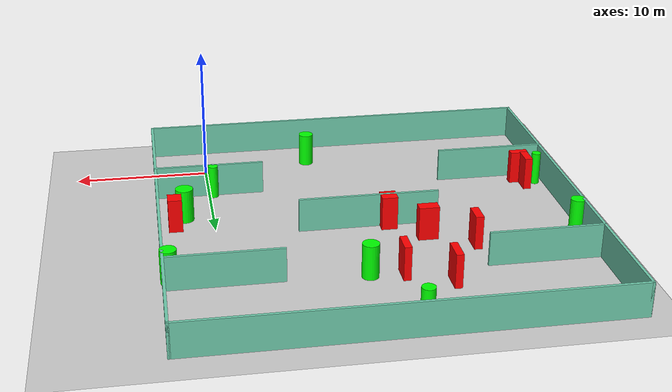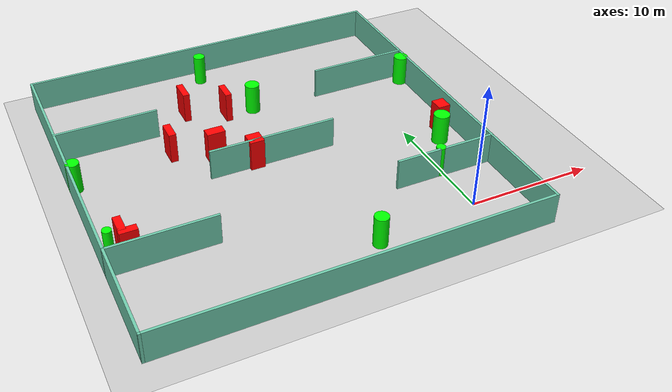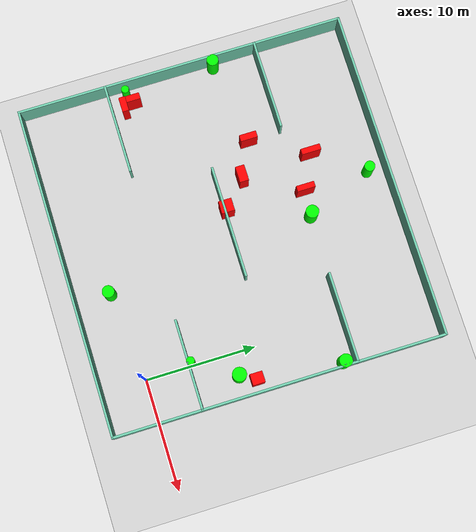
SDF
<sdf version="1.7">
 <world name="default">
  <light name="sun" type="directional">
   <pose>0 0 10 0 -0 0</pose>
   <diffuse>0.8 0.8 0.8 1</diffuse>
   <specular>0.2 0.2 0.2 1</specular>
   <attenuation>
    <range>1000</range>
    <constant>0.9</constant>
    <linear>0.01</linear>
    <quadratic>0.001</quadratic>
   </attenuation>
   <direction>-0.5 0.1 -0.9</direction>
   <spot><inner_angle>0</inner_angle><outer_angle>0</outer_angle><falloff>0</falloff></spot>
  </light>
  <model name="ground_plane">
   <static>1</static>
   <link name="link">
    <collision name="collision">
     <geometry><plane><normal>0 0 1</normal><size>100 100</size></plane></geometry>
     <surface>
      <contact><collide_bitmask>65535</collide_bitmask></contact>
      <friction><ode><mu>100</mu><mu2>50</mu2></ode></friction>
     </surface>
    </collision>
    <visual name="visual">
     <cast_shadows>0</cast_shadows>
     <geometry><plane><normal>0 0 1</normal><size>100 100</size></plane></geometry>
     <material>
      <script><uri>file://media/materials/scripts/gazebo.material</uri><name>Gazebo/Grey</name></script>
     </material>
    </visual>
   </link>
  </model>
  <gravity>0 0 -9.8</gravity>
  <magnetic_field>6e-06 2.3e-05 -4.2e-05</magnetic_field>
  <atmosphere type="adiabatic"/>
  <physics type="ode">
   <max_step_size>0.001</max_step_size>
   <real_time_factor>1</real_time_factor>
   <real_time_update_rate>1000</real_time_update_rate>
  </physics>
  <scene><ambient>0.4 0.4 0.4 1</ambient><background>0.7 0.7 0.7 1</background><shadows>1</shadows></scene>
  <spherical_coordinates>
   <surface_model>EARTH_WGS84</surface_model>
   <latitude_deg>0</latitude_deg>
   <longitude_deg>0</longitude_deg>
   <elevation>0</elevation>
   <heading_deg>0</heading_deg>
  </spherical_coordinates>
  <model name="my_base_walls">
   <link name="Wall_10">
    <collision name="Wall_10_Collision">
     <geometry><box><size>8.2 0.2 2.5</size></box></geometry>
     <pose>0 0 1.25 0 -0 0</pose>
    </collision>
    <visual name="Wall_10_Visual">
     <pose>0 0 1.25 0 -0 0</pose>
     <geometry><box><size>8.2 0.2 2.5</size></box></geometry>
     <material>
      <script><uri>file://media/materials/scripts/gazebo.material</uri><name>Gazebo/Grey</name></script>
      <ambient>0.435294 0.796078 0.67451 1</ambient>
     </material>
     <meta><layer>0</layer></meta>
    </visual>
    <pose>-11 -7 0 0 -0 0</pose>
   </link>
   <link name="Wall_12">
    <collision name="Wall_12_Collision">
     <geometry><box><size>8.2 0.2 2.5</size></box></geometry>
     <pose>0 0 1.25 0 -0 0</pose>
    </collision>
    <visual name="Wall_12_Visual">
     <pose>0 0 1.25 0 -0 0</pose>
     <geometry><box><size>8.2 0.2 2.5</size></box></geometry>
     <material>
      <script><uri>file://media/materials/scripts/gazebo.material</uri><name>Gazebo/Grey</name></script>
      <ambient>0.435294 0.796078 0.67451 1</ambient>
     </material>
     <meta><layer>0</layer></meta>
    </visual>
    <pose>-11 7 0 0 -0 0</pose>
   </link>
   <link name="Wall_14">
    <collision name="Wall_14_Collision">
     <geometry><box><size>8.2 0.2 2.5</size></box></geometry>
     <pose>0 0 1.25 0 -0 0</pose>
    </collision>
    <visual name="Wall_14_Visual">
     <pose>0 0 1.25 0 -0 0</pose>
     <geometry><box><size>8.2 0.2 2.5</size></box></geometry>
     <material>
      <script><uri>file://media/materials/scripts/gazebo.material</uri><name>Gazebo/Grey</name></script>
      <ambient>0.435294 0.796078 0.67451 1</ambient>
     </material>
     <meta><layer>0</layer></meta>
    </visual>
    <pose>11 7 0 0 -0 3.14159</pose>
   </link>
   <link name="Wall_16">
    <collision name="Wall_16_Collision">
     <geometry><box><size>10.2 0.2 2.5</size></box></geometry>
     <pose>0 0 1.25 0 -0 0</pose>
    </collision>
    <visual name="Wall_16_Visual">
     <pose>0 0 1.25 0 -0 0</pose>
     <geometry><box><size>10.2 0.2 2.5</size></box></geometry>
     <material>
      <script><uri>file://media/materials/scripts/gazebo.material</uri><name>Gazebo/Grey</name></script>
      <ambient>0.435294 0.796078 0.67451 1</ambient>
     </material>
     <meta><layer>0</layer></meta>
    </visual>
    <pose>0 0 0 0 -0 3.14159</pose>
   </link>
   <link name="Wall_2">
    <collision name="Wall_2_Collision">
     <geometry><box><size>30.2 0.2 2.5</size></box></geometry>
     <pose>0 0 1.25 0 -0 0</pose>
    </collision>
    <visual name="Wall_2_Visual">
     <pose>0 0 1.25 0 -0 0</pose>
     <geometry><box><size>30.2 0.2 2.5</size></box></geometry>
     <material>
      <script><uri>file://media/materials/scripts/gazebo.material</uri><name>Gazebo/Grey</name></script>
      <ambient>0.435294 0.796078 0.67451 1</ambient>
     </material>
     <meta><layer>0</layer></meta>
    </visual>
    <pose>0 -15 0 0 -0 3.14159</pose>
   </link>
   <link name="Wall_3">
    <collision name="Wall_3_Collision">
     <geometry><box><size>30.2 0.2 2.5</size></box></geometry>
     <pose>0 0 1.25 0 -0 0</pose>
    </collision>
    <visual name="Wall_3_Visual">
     <pose>0 0 1.25 0 -0 0</pose>
     <geometry><box><size>30.2 0.2 2.5</size></box></geometry>
     <material>
      <script><uri>file://media/materials/scripts/gazebo.material</uri><name>Gazebo/Grey</name></script>
      <ambient>0.435294 0.796078 0.67451 1</ambient>
     </material>
     <meta><layer>0</layer></meta>
    </visual>
    <pose>-15 0 0 0 -0 1.5708</pose>
   </link>
   <link name="Wall_4">
    <collision name="Wall_4_Collision">
     <geometry><box><size>30.2 0.2 2.5</size></box></geometry>
     <pose>0 0 1.25 0 -0 0</pose>
    </collision>
    <visual name="Wall_4_Visual">
     <pose>0 0 1.25 0 -0 0</pose>
     <geometry><box><size>30.2 0.2 2.5</size></box></geometry>
     <material>
      <script><uri>file://media/materials/scripts/gazebo.material</uri><name>Gazebo/Grey</name></script>
      <ambient>0.435294 0.796078 0.67451 1</ambient>
     </material>
     <meta><layer>0</layer></meta>
    </visual>
    <pose>0 15 0 0 -0 0</pose>
   </link>
   <link name="Wall_6">
    <collision name="Wall_6_Collision">
     <geometry><box><size>30.2 0.2 2.5</size></box></geometry>
     <pose>0 0 1.25 0 -0 0</pose>
    </collision>
    <visual name="Wall_6_Visual">
     <pose>0 0 1.25 0 -0 0</pose>
     <geometry><box><size>30.2 0.2 2.5</size></box></geometry>
     <material>
      <script><uri>file://media/materials/scripts/gazebo.material</uri><name>Gazebo/Grey</name></script>
      <ambient>0.435294 0.796078 0.67451 1</ambient>
     </material>
     <meta><layer>0</layer></meta>
    </visual>
    <pose>15 0 0 0 -0 1.5708</pose>
   </link>
   <link name="Wall_8">
    <collision name="Wall_8_Collision">
     <geometry><box><size>8.2 0.2 2.5</size></box></geometry>
     <pose>0 0 1.25 0 -0 0</pose>
    </collision>
    <visual name="Wall_8_Visual">
     <pose>0 0 1.25 0 -0 0</pose>
     <geometry><box><size>8.2 0.2 2.5</size></box></geometry>
     <material>
      <script><uri>file://media/materials/scripts/gazebo.material</uri><name>Gazebo/Grey</name></script>
      <ambient>0.435294 0.796078 0.67451 1</ambient>
     </material>
     <meta><layer>0</layer></meta>
    </visual>
    <pose>11 -7 0 0 -0 3.14159</pose>
   </link>
   <static>1</static>
   <pose>-11 11 0 0 -0 0</pose>
  </model>
  <model name="cylinder1">
   <static>1</static>
   <link name="link">
    <inertial>
     <mass>1</mass>
     <inertia><ixx>0.5</ixx><ixy>0</ixy><ixz>0</ixz><iyy>0.5</iyy><iyz>0</iyz><izz>1</izz></inertia>
    </inertial>
    <collision name="collision">
     <geometry><cylinder><radius>0.52744846134894</radius><length>2.5</length></cylinder></geometry>
    </collision>
    <visual name="visual">
     <geometry><cylinder><radius>0.52744846134894</radius><length>2.5</length></cylinder></geometry>
     <material>
      <ambient>0 1 0 1</ambient>
      <diffuse>0 1 0 1</diffuse>
      <specular>0.1 0.1 0.1 1</specular>
      <emissive>0 0 0 0</emissive>
     </material>
    </visual>
   </link>
   <pose>-25.58956207699537 13.96058366514859 1.25 0 0 0</pose>
  </model>
  <model name="cylinder2">
   <static>1</static>
   <link name="link">
    <inertial>
     <mass>1</mass>
     <inertia><ixx>0.5</ixx><ixy>0</ixy><ixz>0</ixz><iyy>0.5</iyy><iyz>0</iyz><izz>1</izz></inertia>
    </inertial>
    <collision name="collision">
     <geometry><cylinder><radius>0.5904958401156242</radius><length>2.5</length></cylinder></geometry>
    </collision>
    <visual name="visual">
     <geometry><cylinder><radius>0.5904958401156242</radius><length>2.5</length></cylinder></geometry>
     <material>
      <ambient>0 1 0 1</ambient>
      <diffuse>0 1 0 1</diffuse>
      <specular>0.1 0.1 0.1 1</specular>
      <emissive>0 0 0 0</emissive>
     </material>
    </visual>
   </link>
   <pose>-9.687258275873598 18.274568493887333 1.25 0 0 0</pose>
  </model>
  <model name="cylinder3">
   <static>1</static>
   <link name="link">
    <inertial>
     <mass>1</mass>
     <inertia><ixx>0.5</ixx><ixy>0</ixy><ixz>0</ixz><iyy>0.5</iyy><iyz>0</iyz><izz>1</izz></inertia>
    </inertial>
    <collision name="collision">
     <geometry><cylinder><radius>0.5465878273119239</radius><length>2.5</length></cylinder></geometry>
    </collision>
    <visual name="visual">
     <geometry><cylinder><radius>0.5465878273119239</radius><length>2.5</length></cylinder></geometry>
     <material>
      <ambient>0 1 0 1</ambient>
      <diffuse>0 1 0 1</diffuse>
      <specular>0.1 0.1 0.1 1</specular>
      <emissive>0 0 0 0</emissive>
     </material>
    </visual>
   </link>
   <pose>-8.15795325583537 -0.8506232189790226 1.25 0 0 0</pose>
  </model>
  <model name="cylinder4">
   <static>1</static>
   <link name="link">
    <inertial>
     <mass>1</mass>
     <inertia><ixx>0.5</ixx><ixy>0</ixy><ixz>0</ixz><iyy>0.5</iyy><iyz>0</iyz><izz>1</izz></inertia>
    </inertial>
    <collision name="collision">
     <geometry><cylinder><radius>0.34525372056909515</radius><length>2.5</length></cylinder></geometry>
    </collision>
    <visual name="visual">
     <geometry><cylinder><radius>0.34525372056909515</radius><length>2.5</length></cylinder></geometry>
     <material>
      <ambient>0 1 0 1</ambient>
      <diffuse>0 1 0 1</diffuse>
      <specular>0.1 0.1 0.1 1</specular>
      <emissive>0 0 0 0</emissive>
     </material>
    </visual>
   </link>
   <pose>-25.27329374919644 5.672462128392834 1.25 0 0 0</pose>
  </model>
  <model name="cylinder5">
   <static>1</static>
   <link name="link">
    <inertial>
     <mass>1</mass>
     <inertia><ixx>0.5</ixx><ixy>0</ixy><ixz>0</ixz><iyy>0.5</iyy><iyz>0</iyz><izz>1</izz></inertia>
    </inertial>
    <collision name="collision">
     <geometry><cylinder><radius>0.587100804748351</radius><length>2.5</length></cylinder></geometry>
    </collision>
    <visual name="visual">
     <geometry><cylinder><radius>0.587100804748351</radius><length>2.5</length></cylinder></geometry>
     <material>
      <ambient>0 1 0 1</ambient>
      <diffuse>0 1 0 1</diffuse>
      <specular>0.1 0.1 0.1 1</specular>
      <emissive>0 0 0 0</emissive>
     </material>
    </visual>
   </link>
   <pose>3.6024187662653127 17.01781076560577 1.25 0 0 0</pose>
  </model>
  <model name="cylinder6">
   <static>1</static>
   <link name="link">
    <inertial>
     <mass>1</mass>
     <inertia><ixx>0.5</ixx><ixy>0</ixy><ixz>0</ixz><iyy>0.5</iyy><iyz>0</iyz><izz>1</izz></inertia>
    </inertial>
    <collision name="collision">
     <geometry><cylinder><radius>0.4724421995819053</radius><length>2.5</length></cylinder></geometry>
    </collision>
    <visual name="visual">
     <geometry><cylinder><radius>0.4724421995819053</radius><length>2.5</length></cylinder></geometry>
     <material>
      <ambient>0 1 0 1</ambient>
      <diffuse>0 1 0 1</diffuse>
      <specular>0.1 0.1 0.1 1</specular>
      <emissive>0 0 0 0</emissive>
     </material>
    </visual>
   </link>
   <pose>-12.088333479182442 24.3928369081048 1.25 0 0 0</pose>
  </model>
  <model name="cylinder7">
   <static>1</static>
   <link name="link">
    <inertial>
     <mass>1</mass>
     <inertia><ixx>0.5</ixx><ixy>0</ixy><ixz>0</ixz><iyy>0.5</iyy><iyz>0</iyz><izz>1</izz></inertia>
    </inertial>
    <collision name="collision">
     <geometry><cylinder><radius>0.3696301033395198</radius><length>2.5</length></cylinder></geometry>
    </collision>
    <visual name="visual">
     <geometry><cylinder><radius>0.3696301033395198</radius><length>2.5</length></cylinder></geometry>
     <material>
      <ambient>0 1 0 1</ambient>
      <diffuse>0 1 0 1</diffuse>
      <specular>0.1 0.1 0.1 1</specular>
      <emissive>0 0 0 0</emissive>
     </material>
    </visual>
   </link>
   <pose>-0.3114491732155784 4.233436980088408 1.25 0 0 0</pose>
  </model>
  <model name="cylinder8">
   <static>1</static>
   <link name="link">
    <inertial>
     <mass>1</mass>
     <inertia><ixx>0.5</ixx><ixy>0</ixy><ixz>0</ixz><iyy>0.5</iyy><iyz>0</iyz><izz>1</izz></inertia>
    </inertial>
    <collision name="collision">
     <geometry><cylinder><radius>0.6405236973601126</radius><length>2.5</length></cylinder></geometry>
    </collision>
    <visual name="visual">
     <geometry><cylinder><radius>0.6405236973601126</radius><length>2.5</length></cylinder></geometry>
     <material>
      <ambient>0 1 0 1</ambient>
      <diffuse>0 1 0 1</diffuse>
      <specular>0.1 0.1 0.1 1</specular>
      <emissive>0 0 0 0</emissive>
     </material>
    </visual>
   </link>
   <pose>2.048147059368418 7.915569471563112 1.25 0 0 0</pose>
  </model>
  <model name="box1">
   <static>1</static>
   <link name="link">
    <inertial>
     <mass>1</mass>
     <inertia><ixx>0.083</ixx><ixy>0</ixy><ixz>0</ixz><iyy>0.083</iyy><iyz>0</iyz><izz>0.083</izz></inertia>
    </inertial>
    <collision name="collision">
     <geometry><box><size>0.5748237381809693 1.488206019633547 2.5</size></box></geometry>
    </collision>
    <visual name="visual">
     <geometry><box><size>0.5748237381809693 1.488206019633547 2.5</size></box></geometry>
     <material>
      <ambient>1 0 0 1</ambient>
      <diffuse>1 0 0 1</diffuse>
      <specular>0.1 0.1 0.1 1</specular>
      <emissive>0 0 0 0</emissive>
     </material>
    </visual>
    <sensor name="my_contact" type="contact">
     <contact><collision>box_collision</collision><topic>__default_topic__</topic></contact>
    </sensor>
   </link>
   <pose>-24.337482049346733 6.016591323357078 1.25 0 0 0</pose>
  </model>
  <model name="box2">
   <static>1</static>
   <link name="link">
    <inertial>
     <mass>1</mass>
     <inertia><ixx>0.083</ixx><ixy>0</ixy><ixz>0</ixz><iyy>0.083</iyy><iyz>0</iyz><izz>0.083</izz></inertia>
    </inertial>
    <collision name="collision">
     <geometry><box><size>0.5830584255024718 1.5517935719548617 2.5</size></box></geometry>
    </collision>
    <visual name="visual">
     <geometry><box><size>0.5830584255024718 1.5517935719548617 2.5</size></box></geometry>
     <material>
      <ambient>1 0 0 1</ambient>
      <diffuse>1 0 0 1</diffuse>
      <specular>0.1 0.1 0.1 1</specular>
      <emissive>0 0 0 0</emissive>
     </material>
    </visual>
    <sensor name="my_contact" type="contact">
     <contact><collision>box_collision</collision><topic>__default_topic__</topic></contact>
    </sensor>
   </link>
   <pose>-17.87509977513122 14.935429114059449 1.25 0 0 0</pose>
  </model>
  <model name="box3">
   <static>1</static>
   <link name="link">
    <inertial>
     <mass>1</mass>
     <inertia><ixx>0.083</ixx><ixy>0</ixy><ixz>0</ixz><iyy>0.083</iyy><iyz>0</iyz><izz>0.083</izz></inertia>
    </inertial>
    <collision name="collision">
     <geometry><box><size>1.3462296656964 0.5974601546969883 2.5</size></box></geometry>
    </collision>
    <visual name="visual">
     <geometry><box><size>1.3462296656964 0.5974601546969883 2.5</size></box></geometry>
     <material>
      <ambient>1 0 0 1</ambient>
      <diffuse>1 0 0 1</diffuse>
      <specular>0.1 0.1 0.1 1</specular>
      <emissive>0 0 0 0</emissive>
     </material>
    </visual>
    <sensor name="my_contact" type="contact">
     <contact><collision>box_collision</collision><topic>__default_topic__</topic></contact>
    </sensor>
   </link>
   <pose>-23.989591341680025 5.165577344260118 1.25 0 0 0</pose>
  </model>
  <model name="box4">
   <static>1</static>
   <link name="link">
    <inertial>
     <mass>1</mass>
     <inertia><ixx>0.083</ixx><ixy>0</ixy><ixz>0</ixz><iyy>0.083</iyy><iyz>0</iyz><izz>0.083</izz></inertia>
    </inertial>
    <collision name="collision">
     <geometry><box><size>1.452467140754694 0.8267453096554721 2.5</size></box></geometry>
    </collision>
    <visual name="visual">
     <geometry><box><size>1.452467140754694 0.8267453096554721 2.5</size></box></geometry>
     <material>
      <ambient>1 0 0 1</ambient>
      <diffuse>1 0 0 1</diffuse>
      <specular>0.1 0.1 0.1 1</specular>
      <emissive>0 0 0 0</emissive>
     </material>
    </visual>
    <sensor name="my_contact" type="contact">
     <contact><collision>box_collision</collision><topic>__default_topic__</topic></contact>
    </sensor>
   </link>
   <pose>-14.780874669063843 13.37909523438438 1.25 0 0 0</pose>
  </model>
  <model name="box5">
   <static>1</static>
   <link name="link">
    <inertial>
     <mass>1</mass>
     <inertia><ixx>0.083</ixx><ixy>0</ixy><ixz>0</ixz><iyy>0.083</iyy><iyz>0</iyz><izz>0.083</izz></inertia>
    </inertial>
    <collision name="collision">
     <geometry><box><size>0.5154353540104857 1.6474869529184315 2.5</size></box></geometry>
    </collision>
    <visual name="visual">
     <geometry><box><size>0.5154353540104857 1.6474869529184315 2.5</size></box></geometry>
     <material>
      <ambient>1 0 0 1</ambient>
      <diffuse>1 0 0 1</diffuse>
      <specular>0.1 0.1 0.1 1</specular>
      <emissive>0 0 0 0</emissive>
     </material>
    </visual>
    <sensor name="my_contact" type="contact">
     <contact><collision>box_collision</collision><topic>__default_topic__</topic></contact>
    </sensor>
   </link>
   <pose>-12.003599014965761 18.411931664343264 1.25 0 0 0</pose>
  </model>
  <model name="box6">
   <static>1</static>
   <link name="link">
    <inertial>
     <mass>1</mass>
     <inertia><ixx>0.083</ixx><ixy>0</ixy><ixz>0</ixz><iyy>0.083</iyy><iyz>0</iyz><izz>0.083</izz></inertia>
    </inertial>
    <collision name="collision">
     <geometry><box><size>0.5269665655390628 1.7669732507930198 2.5</size></box></geometry>
    </collision>
    <visual name="visual">
     <geometry><box><size>0.5269665655390628 1.7669732507930198 2.5</size></box></geometry>
     <material>
      <ambient>1 0 0 1</ambient>
      <diffuse>1 0 0 1</diffuse>
      <specular>0.1 0.1 0.1 1</specular>
      <emissive>0 0 0 0</emissive>
     </material>
    </visual>
    <sensor name="my_contact" type="contact">
     <contact><collision>box_collision</collision><topic>__default_topic__</topic></contact>
    </sensor>
   </link>
   <pose>-15.09633580489378 19.877741900685987 1.25 0 0 0</pose>
  </model>
  <model name="box7">
   <static>1</static>
   <link name="link">
    <inertial>
     <mass>1</mass>
     <inertia><ixx>0.083</ixx><ixy>0</ixy><ixz>0</ixz><iyy>0.083</iyy><iyz>0</iyz><izz>0.083</izz></inertia>
    </inertial>
    <collision name="collision">
     <geometry><box><size>1.010341913260592 1.1218825751031765 2.5</size></box></geometry>
    </collision>
    <visual name="visual">
     <geometry><box><size>1.010341913260592 1.1218825751031765 2.5</size></box></geometry>
     <material>
      <ambient>1 0 0 1</ambient>
      <diffuse>1 0 0 1</diffuse>
      <specular>0.1 0.1 0.1 1</specular>
      <emissive>0 0 0 0</emissive>
     </material>
    </visual>
    <sensor name="my_contact" type="contact">
     <contact><collision>box_collision</collision><topic>__default_topic__</topic></contact>
    </sensor>
   </link>
   <pose>2.8141182359166166 9.298962347573623 1.25 0 0 0</pose>
  </model>
  <model name="box8">
   <static>1</static>
   <link name="link">
    <inertial>
     <mass>1</mass>
     <inertia><ixx>0.083</ixx><ixy>0</ixy><ixz>0</ixz><iyy>0.083</iyy><iyz>0</iyz><izz>0.083</izz></inertia>
    </inertial>
    <collision name="collision">
     <geometry><box><size>1.149506397771352 1.1821921294872484 2.5</size></box></geometry>
    </collision>
    <visual name="visual">
     <geometry><box><size>1.149506397771352 1.1821921294872484 2.5</size></box></geometry>
     <material>
      <ambient>1 0 0 1</ambient>
      <diffuse>1 0 0 1</diffuse>
      <specular>0.1 0.1 0.1 1</specular>
      <emissive>0 0 0 0</emissive>
     </material>
    </visual>
    <sensor name="my_contact" type="contact">
     <contact><collision>box_collision</collision><topic>__default_topic__</topic></contact>
    </sensor>
   </link>
   <pose>-12.391014428791472 11.213194882716731 1.25 0 0 0</pose>
  </model>
 </world>
</sdf>
